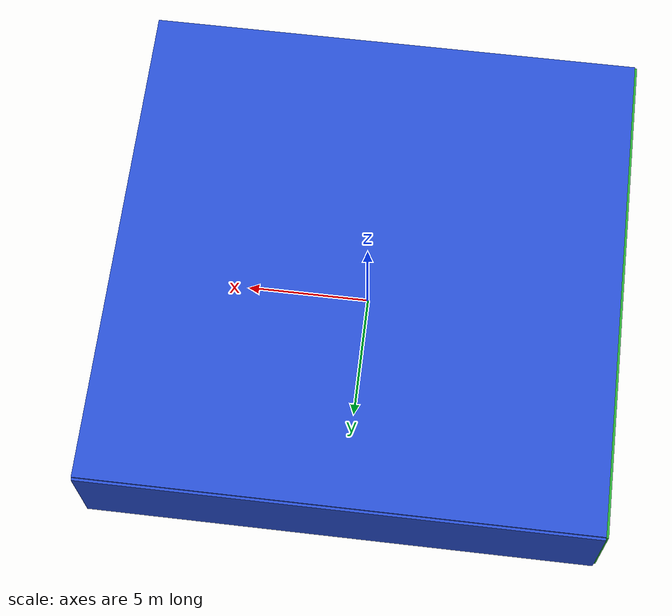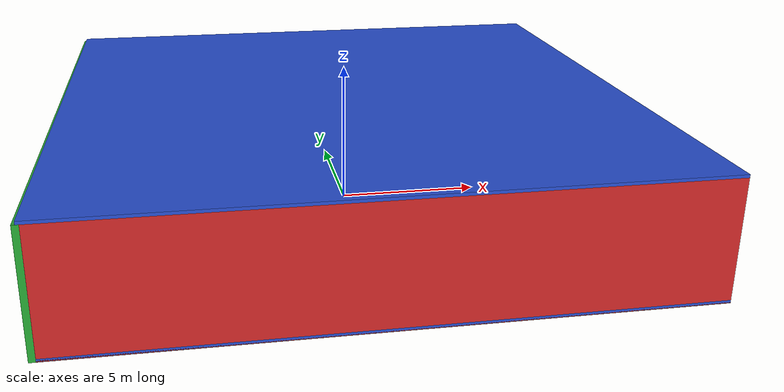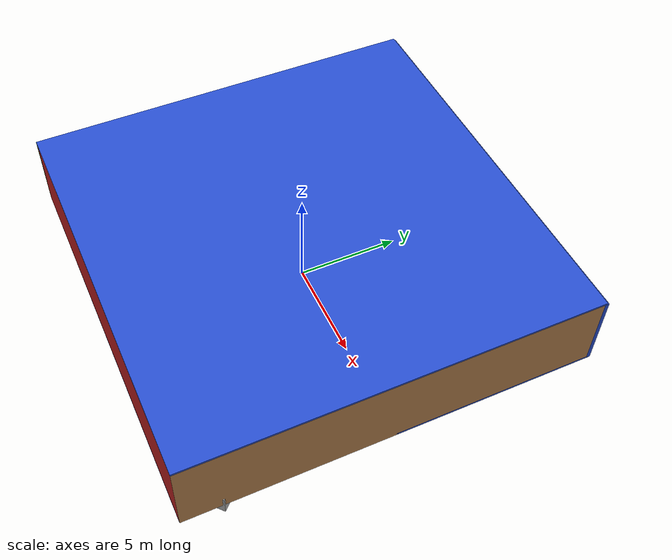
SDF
<sdf version="1.4">
 <world name="default">
  <physics type="ode">
   <max_step_size>0.001</max_step_size>
   <real_time_factor>1</real_time_factor>
   <real_time_update_rate>1000</real_time_update_rate>
   <gravity>0 0 -9.8</gravity>
  </physics>
  <scene><ambient>0.4 0.4 0.4 1</ambient><background>0.7 0.7 0.7 1</background><shadows>1</shadows></scene>
  <model name="Surrounding">
   <static>1</static>
   <link name="Ceiling">
    <collision name="Ceiling_Collision"><geometry><box><size>20 20 0.1</size></box></geometry></collision>
    <visual name="Ceiling_Visual">
     <geometry><box><size>20 20 0.1</size></box></geometry>
     <material>
      <script><uri>file://media/materials/scripts/gazebo.material</uri><name>Gazebo/BlueLaser</name></script>
     </material>
    </visual>
    <pose>0 0 4.05 0 0 0</pose>
   </link>
   <link name="Wall_South">
    <collision name="Wall_South_Collision">
     <geometry><box><size>20 0 4</size></box></geometry>
     <pose>0 0 2 0 -0 0</pose>
    </collision>
    <visual name="Wall_South_Visual">
     <pose>0 0 2 0 -0 0</pose>
     <geometry><box><size>20 0 4</size></box></geometry>
     <material>
      <script><uri>file://media/materials/scripts/gazebo.material</uri><name>Gazebo/Red</name></script>
     </material>
    </visual>
    <velocity_decay><linear>0</linear><angular>0</angular></velocity_decay>
    <pose>0 -10 0 0 -0 0</pose>
   </link>
   <link name="Wall_East">
    <collision name="Wall_21_Collision">
     <geometry><box><size>20 0 4</size></box></geometry>
     <pose>0 0 2 0 -0 0</pose>
    </collision>
    <visual name="Wall_21_Visual">
     <pose>0 0 2 0 -0 0</pose>
     <geometry><box><size>20 0 4</size></box></geometry>
     <material>
      <script><uri>file://media/materials/scripts/gazebo.material</uri><name>Gazebo/Wood</name></script>
     </material>
    </visual>
    <velocity_decay><linear>0</linear><angular>0</angular></velocity_decay>
    <pose>10 0 0 0 -0 1.5708</pose>
   </link>
   <link name="Wall_North">
    <collision name="Wall_22_Collision">
     <geometry><box><size>20 0.2 4</size></box></geometry>
     <pose>0 0 2 0 -0 0</pose>
    </collision>
    <visual name="Wall_22_Visual">
     <pose>0 0 2 0 -0 0</pose>
     <geometry><box><size>20 0.2 4</size></box></geometry>
     <material>
      <script><uri>file://media/materials/scripts/gazebo.material</uri><name>Gazebo/BlueGlow</name></script>
     </material>
    </visual>
    <velocity_decay><linear>0</linear><angular>0</angular></velocity_decay>
    <pose>0 10 0 0 -0 0</pose>
   </link>
   <link name="Wall_West">
    <collision name="Wall_23_Collision">
     <geometry><box><size>20 0.2 4</size></box></geometry>
     <pose>0 0 2 0 -0 0</pose>
    </collision>
    <visual name="Wall_23_Visual">
     <pose>0 0 2 0 -0 0</pose>
     <geometry><box><size>20 0.2 4</size></box></geometry>
     <material>
      <script><uri>file://media/materials/scripts/gazebo.material</uri><name>Gazebo/Green</name></script>
     </material>
    </visual>
    <velocity_decay><linear>0</linear><angular>0</angular></velocity_decay>
    <pose>-10 0 0 0 0 -1.5708</pose>
   </link>
   <link name="Ground_link">
    <collision name="collision">
     <pose>0 0 .05 0 -0 0</pose>
     <geometry><box><size>20 20 0.1</size></box></geometry>
    </collision>
    <visual name="visual">
     <pose>0 0 .05 0 -0 0</pose>
     <geometry><box><size>20 20 0.1</size></box></geometry>
     <material>
      <script><uri>file://media/materials/scripts/gazebo.material</uri><name>Gazebo/Blue</name></script>
     </material>
    </visual>
   </link>
   <static>1</static>
  </model>
  <spherical_coordinates>
   <surface_model>EARTH_WGS84</surface_model>
   <latitude_deg>0</latitude_deg>
   <longitude_deg>0</longitude_deg>
   <elevation>0</elevation>
   <heading_deg>0</heading_deg>
  </spherical_coordinates>
  <light name="lightball_0" type="diffuse">
   <diffuse>0.8 0.8 0.8 1</diffuse>
   <specular>0.2 0.2 0.2 1</specular>
   <attenuation>
    <range>100</range>
    <constant>0.7</constant>
    <linear>0.01</linear>
    <quadratic>0.001</quadratic>
   </attenuation>
   <direction>-0.5 0.1 -0.9</direction>
   <pose>-5.32607471224 -8.77086895633 1.60523405283 0 0 0</pose>
  </light>
  <light name="lightball_1" type="diffuse">
   <diffuse>0.8 0.8 0.8 1</diffuse>
   <specular>0.2 0.2 0.2 1</specular>
   <attenuation>
    <range>100</range>
    <constant>0.7</constant>
    <linear>0.01</linear>
    <quadratic>0.001</quadratic>
   </attenuation>
   <direction>-0.5 0.1 -0.9</direction>
   <pose>9.77640319016 -0.562450812255 1.18932451412 0 0 0</pose>
  </light>
  <light name="lightball_2" type="diffuse">
   <diffuse>0.8 0.8 0.8 1</diffuse>
   <specular>0.2 0.2 0.2 1</specular>
   <attenuation>
    <range>100</range>
    <constant>0.7</constant>
    <linear>0.01</linear>
    <quadratic>0.001</quadratic>
   </attenuation>
   <direction>-0.5 0.1 -0.9</direction>
   <pose>9.65519627673 4.38119781444 1.61465696579 0 0 0</pose>
  </light>
  <light name="lightball_3" type="diffuse">
   <diffuse>0.8 0.8 0.8 1</diffuse>
   <specular>0.2 0.2 0.2 1</specular>
   <attenuation>
    <range>100</range>
    <constant>0.7</constant>
    <linear>0.01</linear>
    <quadratic>0.001</quadratic>
   </attenuation>
   <direction>-0.5 0.1 -0.9</direction>
   <pose>3.66051087174 -9.35071417831 1.44746617409 0 0 0</pose>
  </light>
  <light name="lightball_4" type="diffuse">
   <diffuse>0.8 0.8 0.8 1</diffuse>
   <specular>0.2 0.2 0.2 1</specular>
   <attenuation>
    <range>100</range>
    <constant>0.7</constant>
    <linear>0.01</linear>
    <quadratic>0.001</quadratic>
   </attenuation>
   <direction>-0.5 0.1 -0.9</direction>
   <pose>-3.00297044097 -4.49429967327 0.952494945359 0 0 0</pose>
  </light>
  <light name="lightball_5" type="diffuse">
   <diffuse>0.8 0.8 0.8 1</diffuse>
   <specular>0.2 0.2 0.2 1</specular>
   <attenuation>
    <range>100</range>
    <constant>0.7</constant>
    <linear>0.01</linear>
    <quadratic>0.001</quadratic>
   </attenuation>
   <direction>-0.5 0.1 -0.9</direction>
   <pose>6.17838244908 6.92364561386 1.26733164534 0 0 0</pose>
  </light>
  <light name="lightball_6" type="diffuse">
   <diffuse>0.8 0.8 0.8 1</diffuse>
   <specular>0.2 0.2 0.2 1</specular>
   <attenuation>
    <range>100</range>
    <constant>0.7</constant>
    <linear>0.01</linear>
    <quadratic>0.001</quadratic>
   </attenuation>
   <direction>-0.5 0.1 -0.9</direction>
   <pose>5.52493780353 -5.57572894282 3.27639334581 0 0 0</pose>
  </light>
  <light name="lightball_7" type="diffuse">
   <diffuse>0.8 0.8 0.8 1</diffuse>
   <specular>0.2 0.2 0.2 1</specular>
   <attenuation>
    <range>100</range>
    <constant>0.7</constant>
    <linear>0.01</linear>
    <quadratic>0.001</quadratic>
   </attenuation>
   <direction>-0.5 0.1 -0.9</direction>
   <pose>0.860235541687 -7.91152980888 3.3460824922 0 0 0</pose>
  </light>
  <light name="lightball_8" type="diffuse">
   <diffuse>0.8 0.8 0.8 1</diffuse>
   <specular>0.2 0.2 0.2 1</specular>
   <attenuation>
    <range>100</range>
    <constant>0.7</constant>
    <linear>0.01</linear>
    <quadratic>0.001</quadratic>
   </attenuation>
   <direction>-0.5 0.1 -0.9</direction>
   <pose>-8.82366087451 -4.83340254935 3.84953529824 0 0 0</pose>
  </light>
  <light name="lightball_9" type="diffuse">
   <diffuse>0.8 0.8 0.8 1</diffuse>
   <specular>0.2 0.2 0.2 1</specular>
   <attenuation>
    <range>100</range>
    <constant>0.7</constant>
    <linear>0.01</linear>
    <quadratic>0.001</quadratic>
   </attenuation>
   <direction>-0.5 0.1 -0.9</direction>
   <pose>6.25807199562 -8.8907634191 1.68746186993 0 0 0</pose>
  </light>
  <light name="lightball_10" type="diffuse">
   <diffuse>0.8 0.8 0.8 1</diffuse>
   <specular>0.2 0.2 0.2 1</specular>
   <attenuation>
    <range>100</range>
    <constant>0.7</constant>
    <linear>0.01</linear>
    <quadratic>0.001</quadratic>
   </attenuation>
   <direction>-0.5 0.1 -0.9</direction>
   <pose>2.59776675205 -5.05373835291 0.515928799816 0 0 0</pose>
  </light>
  <light name="lightball_11" type="diffuse">
   <diffuse>0.8 0.8 0.8 1</diffuse>
   <specular>0.2 0.2 0.2 1</specular>
   <attenuation>
    <range>100</range>
    <constant>0.7</constant>
    <linear>0.01</linear>
    <quadratic>0.001</quadratic>
   </attenuation>
   <direction>-0.5 0.1 -0.9</direction>
   <pose>0.0159565808957 0.793320733354 1.87605669419 0 0 0</pose>
  </light>
  <include>
   <uri>model://textured_shapes</uri>
   <pose>-7.09689230012 4.97402525947 0 0 0 0.711274622523</pose>
  </include>
  <include><uri>model://cabinet</uri><pose>-1.45818911173 -1.08954505271 0 0 0 1.88150678611</pose></include>
  <include><uri>model://table</uri><pose>1.83921013416 -8.36210377479 0 0 0 1.56683386878</pose></include>
  <include>
   <uri>model://construction_cone</uri>
   <pose>4.79370681449 -1.34564997157 0 0 0 0.479505687371</pose>
  </include>
  <include>
   <uri>model://robocup_3Dsim_goal</uri>
   <pose>4.5376541107 4.2674146558 0 0 0 3.0194753645</pose>
  </include>
  <include>
   <uri>model://textured_shapes</uri>
   <pose>8.33894738499 -6.8963013651 0 0 0 0.743165667381</pose>
  </include>
 </world>
</sdf>

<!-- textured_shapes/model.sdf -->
<sdf version="1.6">
  <model name="textured_shapes">
    <pose>0 0 0.5 0 0 0</pose>
    <link name="box">
      <pose>0 -1.5 0 0 0 0</pose>
      <collision name="collision">
        <geometry>
          <box>
            <size>1 1 1</size>
          </box>
        </geometry>
      </collision>
      <visual name="visual">
        <geometry>
          <box>
            <size>1 1 1</size>
          </box>
        </geometry>
        <material>
          <script>
            <uri>model://../model_source/models/textured_shapes/materials/scripts</uri>
            <uri>model://../model_source/models/textured_shapes/materials/textures</uri>
            <name>TexturedShape/Squares</name>
          </script>
        </material>
      </visual>
    </link>
    <link name="sphere">
      <collision name="collision">
        <geometry>
          <sphere>
            <radius>0.5</radius>
          </sphere>
        </geometry>
      </collision>
      <visual name="visual">
        <geometry>
          <sphere>
            <radius>0.5</radius>
          </sphere>
        </geometry>
        <material>
          <script>
            <uri>model://../model_source/models/textured_shapes/materials/scripts</uri>
            <uri>model://../model_source/models/textured_shapes/materials/textures</uri>
            <name>TexturedShape/Squares</name>
          </script>
        </material>
      </visual>
    </link>
    <link name="cylinder">
      <pose>0 1.5 0 0 0 0</pose>
      <collision name="collision">
        <geometry>
          <cylinder>
            <radius>0.5</radius>
            <length>1</length>
          </cylinder>
        </geometry>
      </collision>
      <visual name="visual">
        <geometry>
          <cylinder>
            <radius>0.5</radius>
            <length>1</length>
          </cylinder>
        </geometry>
        <material>
          <script>
            <uri>model://../model_source/models/textured_shapes/materials/scripts</uri>
            <uri>model://../model_source/models/textured_shapes/materials/textures</uri>
            <name>TexturedShape/Squares</name>
          </script>
        </material>
      </visual>
    </link>
  </model>
</sdf>

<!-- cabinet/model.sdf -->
<sdf version="1.5">
  <model name="cabinet">
    <static>true</static>
    <link name="cabinet_bottom_plate">
      <inertial>
        <pose>0 0 -1 0 0 0</pose>
        <inertia>
          <ixx>2.050000</ixx>
          <ixy>0</ixy>
          <ixz>0</ixz>
          <iyy>2.050000</iyy>
          <iyz>0</iyz>
          <izz>2.050000</izz>
        </inertia>
        <mass>25.000000</mass>
      </inertial>
      <collision name="cabinet_bottom_plate_geom">
        <pose>0 0 0.010000 0 0 0</pose>
        <geometry>
          <box>
            <size>0.450000 0.450000 0.020000</size>
          </box>
        </geometry>
      </collision>
      <visual name="cabinet_bottom_plate_geom_visual">
        <pose>0 0 0.010000 0 0 0</pose>
        <geometry>
          <box>
            <size>0.450000 0.450000 0.020000</size>
          </box>
        </geometry>
        <material>
          <script>
            <uri>model://media/materials/scripts/gazebo.material</uri>
            <name>Gazebo/Wood</name>
          </script>
        </material>
      </visual>
      <collision name="cabinet_bottom_plate_geom_cabinet_back_plate">
        <pose>0.235000 0 0.510000 0 0 0</pose>
        <geometry>
          <box>
            <size>0.020000 0.450000 1.020000</size>
          </box>
        </geometry>
      </collision>
      <visual name="cabinet_bottom_plate_geom_cabinet_back_plate_visual">
        <pose>0.235000 0 0.510000 0 0 0</pose>
        <geometry>
          <box>
            <size>0.020000 0.450000 1.020000</size>
          </box>
        </geometry>
        <material>
          <script>
            <uri>model://media/materials/scripts/gazebo.material</uri>
            <name>Gazebo/Wood</name>
          </script>
        </material>
      </visual>
      <collision name="cabinet_bottom_plate_geom_cabinet_left_plate">
        <pose>0 0.235000 0.510000 0 0 0</pose>
        <geometry>
          <box>
            <size>0.450000 0.020000 1.020000</size>
          </box>
        </geometry>
      </collision>
      <visual name="cabinet_bottom_plate_geom_cabinet_left_plate_visual">
        <pose>0 0.235000 0.510000 0 0 0</pose>
        <geometry>
          <box>
            <size>0.450000 0.020000 1.020000</size>
          </box>
        </geometry>
        <material>
          <script>
            <uri>model://media/materials/scripts/gazebo.material</uri>
            <name>Gazebo/Wood</name>
          </script>
        </material>
      </visual>
      <collision name="cabinet_bottom_plate_geom_cabinet_middle_plate">
        <pose>0 0 0.510000 0 0 0</pose>
        <geometry>
          <box>
            <size>0.450000 0.450000 0.020000</size>
          </box>
        </geometry>
      </collision>
      <visual name="cabinet_bottom_plate_geom_cabinet_middle_plate_visual">
        <pose>0 0 0.510000 0 0 0</pose>
        <geometry>
          <box>
            <size>0.450000 0.450000 0.020000</size>
          </box>
        </geometry>
        <material>
          <script>
            <uri>model://media/materials/scripts/gazebo.material</uri>
            <name>Gazebo/Wood</name>
          </script>
        </material>
      </visual>
      <collision name="cabinet_bottom_plate_geom_cabinet_right_plate">
        <pose>0 -0.235000 0.510000 0 0 0</pose>
        <geometry>
          <box>
            <size>0.450000 0.020000 1.020000</size>
          </box>
        </geometry>
      </collision>
      <visual name="cabinet_bottom_plate_geom_cabinet_right_plate_visual">
        <pose>0 -0.235000 0.510000 0 0 0</pose>
        <geometry>
          <box>
            <size>0.450000 0.020000 1.020000</size>
          </box>
        </geometry>
        <material>
          <script>
            <uri>model://media/materials/scripts/gazebo.material</uri>
            <name>Gazebo/Wood</name>
          </script>
        </material>
      </visual>
      <collision name="cabinet_bottom_plate_geom_cabinet_top_plate">
        <pose>0 0 1.010000 0 0 0</pose>
        <geometry>
          <box>
            <size>0.450000 0.450000 0.020000</size>
          </box>
        </geometry>
      </collision>
      <visual name="cabinet_bottom_plate_geom_cabinet_top_plate_visual">
        <pose>0 0 1.010000 0 0 0</pose>
        <geometry>
          <box>
            <size>0.450000 0.450000 0.020000</size>
          </box>
        </geometry>
        <material>
          <script>
            <uri>model://media/materials/scripts/gazebo.material</uri>
            <name>Gazebo/Wood</name>
          </script>
        </material>
      </visual>
    </link>
  </model>
</sdf>

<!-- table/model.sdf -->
<sdf version="1.5">
  <model name="table">
    <static>true</static>
    <link name="link">
      <collision name="surface">
        <pose>0 0 1.0 0 0 0</pose>
        <geometry>
          <box>
            <size>1.5 0.8 0.03</size>
          </box>
        </geometry>
        <surface>
          <friction>
            <ode>
              <mu>0.6</mu>
              <mu2>0.6</mu2>
            </ode>
          </friction>
        </surface>
      </collision>
      <visual name="visual1">
        <pose>0 0 1.0 0 0 0</pose>
        <geometry>
          <box>
            <size>1.5 0.8 0.03</size>
          </box>
        </geometry>
        <material>
          <script>
            <uri>model://media/materials/scripts/gazebo.material</uri>
            <name>Gazebo/Wood</name>
          </script>
        </material>
      </visual>
      <collision name="front_left_leg">
        <pose>0.68 0.38 0.5 0 0 0</pose>
        <geometry>
          <cylinder>
            <radius>0.02</radius>
            <length>1.0</length>
          </cylinder>
        </geometry>
      </collision>
      <visual name="front_left_leg">
        <pose>0.68 0.38 0.5 0 0 0</pose>
        <geometry>
          <cylinder>
            <radius>0.02</radius>
            <length>1.0</length>
          </cylinder>
        </geometry>
        <material>
          <script>
            <uri>model://media/materials/scripts/gazebo.material</uri>
            <name>Gazebo/Grey</name>
          </script>
        </material>
      </visual>
      <collision name="front_right_leg">
        <pose>0.68 -0.38 0.5 0 0 0</pose>
        <geometry>
          <cylinder>
            <radius>0.02</radius>
            <length>1.0</length>
          </cylinder>
        </geometry>
      </collision>
      <visual name="front_right_leg">
        <pose>0.68 -0.38 0.5 0 0 0</pose>
        <geometry>
          <cylinder>
            <radius>0.02</radius>
            <length>1.0</length>
          </cylinder>
        </geometry>
        <material>
          <script>
            <uri>model://media/materials/scripts/gazebo.material</uri>
            <name>Gazebo/Grey</name>
          </script>
        </material>
      </visual>
      <collision name="back_right_leg">
        <pose>-0.68 -0.38 0.5 0 0 0</pose>
        <geometry>
          <cylinder>
            <radius>0.02</radius>
            <length>1.0</length>
          </cylinder>
        </geometry>
      </collision>
      <visual name="back_right_leg">
        <pose>-0.68 -0.38 0.5 0 0 0</pose>
        <geometry>
          <cylinder>
            <radius>0.02</radius>
            <length>1.0</length>
          </cylinder>
        </geometry>
        <material>
          <script>
            <uri>model://media/materials/scripts/gazebo.material</uri>
            <name>Gazebo/Grey</name>
          </script>
        </material>
      </visual>
      <collision name="back_left_leg">
        <pose>-0.68 0.38 0.5 0 0 0</pose>
        <geometry>
          <cylinder>
            <radius>0.02</radius>
            <length>1.0</length>
          </cylinder>
        </geometry>
      </collision>
      <visual name="back_left_leg">
        <pose>-0.68 0.38 0.5 0 0 0</pose>
        <geometry>
          <cylinder>
            <radius>0.02</radius>
            <length>1.0</length>
          </cylinder>
        </geometry>
        <material>
          <script>
            <uri>model://media/materials/scripts/gazebo.material</uri>
            <name>Gazebo/Grey</name>
          </script>
        </material>
      </visual>
    </link>
  </model>
</sdf>

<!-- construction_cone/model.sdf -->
<sdf version="1.5">
  <model name="Construction Cone">
    <link name="link">
      <collision name="collision">
        <geometry>
          <mesh>
            <scale>10 10 10</scale>
            <uri>file://isr-testbed/construction_cone/meshes/construction_cone.dae</uri>
          </mesh>
        </geometry>
      </collision>
      <visual name="visual">
        <geometry>
          <mesh>
            <scale>10 10 10</scale>
            <uri>file://isr-testbed/construction_cone/meshes/construction_cone.dae</uri>
          </mesh>
        </geometry>
      </visual>
    </link>
  </model>
</sdf>

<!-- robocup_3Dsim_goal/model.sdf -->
<sdf version="1.5">
  <model name="robocup_3d_goal">
    <static>true</static>
    <link name="left_post">
      <pose>0 1.05 0.45 0 0 0</pose>
      <collision name="collision">
        <geometry>
          <cylinder>
            <radius>0.05</radius>
            <length>0.9</length>
          </cylinder>
        </geometry>
      </collision>
      <visual name="visual">
        <geometry>
          <cylinder>
            <radius>0.05</radius>
            <length>0.9</length>
          </cylinder>
        </geometry>
        <material>
          <script>
            <uri>file://media/materials/scripts/gazebo.material</uri>
            <name>Gazebo/ZincYellow</name>
          </script>
        </material>
      </visual>
    </link>
    <link name="left_support_horiz_lower">
      <pose>0.30 1.05 0.01 0 0 0</pose>
      <collision name="collision">
        <geometry>
          <box>
            <size>0.50 0.02 0.02</size>
          </box>
        </geometry>
      </collision>
      <visual name="visual">
        <geometry>
          <box>
            <size>0.50 0.02 0.02</size>
          </box>
        </geometry>
        <material>
          <script>
            <uri>file://media/materials/scripts/gazebo.material</uri>
            <name>Gazebo/White</name>
          </script>
        </material>
      </visual>
    </link>
    <link name="left_support_horiz_upper">
      <pose>0.30 1.05 0.79 0 0 0</pose>
      <collision name="collision">
        <geometry>
          <box>
            <size>0.50 0.02 0.02</size>
          </box>
        </geometry>
      </collision>
      <visual name="visual">
        <geometry>
          <box>
            <size>0.50 0.02 0.02</size>
          </box>
        </geometry>
        <material>
          <script>
            <uri>file://media/materials/scripts/gazebo.material</uri>
            <name>Gazebo/White</name>
          </script>
        </material>
      </visual>
    </link>
    <link name="left_support_vertical">
      <pose>0.56 1.05 0.4 0 1.5708 0</pose>
      <collision name="collision">
        <geometry>
          <box>
            <size>0.80 0.02 0.02</size>
          </box>
        </geometry>
      </collision>
      <visual name="visual">
        <geometry>
          <box>
            <size>0.80 0.02 0.02</size>
          </box>
        </geometry>
        <material>
          <script>
            <uri>file://media/materials/scripts/gazebo.material</uri>
            <name>Gazebo/White</name>
          </script>
        </material>
      </visual>
    </link>
    <link name="right_support_horiz_lower">
      <pose>0.30 -1.05 0.01 0 0 0</pose>
      <collision name="collision">
        <geometry>
          <box>
            <size>0.50 0.02 0.02</size>
          </box>
        </geometry>
      </collision>
      <visual name="visual">
        <geometry>
          <box>
            <size>0.50 0.02 0.02</size>
          </box>
        </geometry>
        <material>
          <script>
            <uri>file://media/materials/scripts/gazebo.material</uri>
            <name>Gazebo/White</name>
          </script>
        </material>
      </visual>
    </link>
    <link name="right_support_horiz_upper">
      <pose>0.30 -1.05 0.79 0 0 0</pose>
      <collision name="collision">
        <geometry>
          <box>
            <size>0.50 0.02 0.02</size>
          </box>
        </geometry>
      </collision>
      <visual name="visual">
        <geometry>
          <box>
            <size>0.50 0.02 0.02</size>
          </box>
        </geometry>
        <material>
          <script>
            <uri>file://media/materials/scripts/gazebo.material</uri>
            <name>Gazebo/White</name>
          </script>
        </material>
      </visual>
    </link>
    <link name="right_support_vertical">
      <pose>0.56 -1.05 0.4 0 1.5708 0</pose>
      <collision name="collision">
        <geometry>
          <box>
            <size>0.80 0.02 0.02</size>
          </box>
        </geometry>
      </collision>
      <visual name="visual">
        <geometry>
          <box>
            <size>0.80 0.02 0.02</size>
          </box>
        </geometry>
        <material>
          <script>
            <uri>file://media/materials/scripts/gazebo.material</uri>
            <name>Gazebo/White</name>
          </script>
        </material>
      </visual>
    </link>
    <link name="center_support_horiz_lower">
      <pose>0.56 0 0.01 0 1.5708 0</pose>
      <collision name="collision">
        <geometry>
          <box>
            <size>0.02 2.08 0.02</size>
          </box>
        </geometry>
      </collision>
      <visual name="visual">
        <geometry>
          <box>
            <size>0.02 2.08 0.02</size>
          </box>
        </geometry>
        <material>
          <script>
            <uri>file://media/materials/scripts/gazebo.material</uri>
            <name>Gazebo/White</name>
          </script>
        </material>
      </visual>
    </link>
    <link name="center_support_horiz_upper">
      <pose>0.56 0 0.79 0 1.5708 0</pose>
      <collision name="collision">
        <geometry>
          <box>
            <size>0.02 2.08 0.02</size>
          </box>
        </geometry>
      </collision>
      <visual name="visual">
        <geometry>
          <box>
            <size>0.02 2.08 0.02</size>
          </box>
        </geometry>
        <material>
          <script>
            <uri>file://media/materials/scripts/gazebo.material</uri>
            <name>Gazebo/White</name>
          </script>
        </material>
      </visual>
    </link>
    <link name="right_post">
      <pose>0 -1.05 0.45 0 0 0</pose>
      <collision name="collision">
        <geometry>
          <cylinder>
            <radius>0.05</radius>
            <length>0.9</length>
          </cylinder>
        </geometry>
      </collision>
      <visual name="visual">
        <geometry>
          <cylinder>
            <radius>0.05</radius>
            <length>0.9</length>
          </cylinder>
        </geometry>
        <material>
          <script>
            <uri>file://media/materials/scripts/gazebo.material</uri>
            <name>Gazebo/ZincYellow</name>
          </script>
        </material>
      </visual>
    </link>
    <link name="crossbar">
      <pose>0 0 0.85 1.57 1.57 0</pose>
      <collision name="collision">
        <geometry>
          <cylinder>
            <radius>0.05</radius>
            <length>2.0</length>
          </cylinder>
        </geometry>
      </collision>
      <visual name="visual">
        <geometry>
          <cylinder>
            <radius>0.05</radius>
            <length>2.0</length>
          </cylinder>
        </geometry>
        <material>
          <script>
            <uri>file://media/materials/scripts/gazebo.material</uri>
            <name>Gazebo/ZincYellow</name>
          </script>
        </material>
      </visual>
    </link>
    <link name="center_net">
      <pose>0.56 0 0.40 0 0 0</pose>
      <collision name="collision">
        <geometry>
          <box>
            <size>0.01 2.1 0.80</size>
          </box>
        </geometry>
      </collision>
      <visual name="visual">
        <geometry>
          <box>
            <size>0.01 2.1 0.80</size>
          </box>
        </geometry>
        <material>
          <script>
            <uri>model://../model_source/models/robocup09_spl_field/materials/scripts/</uri>
            <uri>model://../model_source/models/robocup09_spl_field/materials/textures/</uri>
            <name>RoboCup/Net</name>
          </script>
        </material>
      </visual>
    </link>
    <link name="left_net">
      <pose>0.30 1.05 0.40 0 0 0</pose>
      <collision name="collision">
        <geometry>
          <box>
            <size>0.50 0.01 0.76</size>
          </box>
        </geometry>
      </collision>
      <visual name="visual">
        <geometry>
          <box>
            <size>0.50 0.01 0.76</size>
          </box>
        </geometry>
        <material>
          <script>
            <uri>model://../model_source/models/robocup09_spl_field/materials/scripts/</uri>
            <uri>model://../model_source/models/robocup09_spl_field/materials/textures/</uri>
            <name>RoboCup/Net</name>
          </script>
        </material>
      </visual>
    </link>
    <link name="right_net">
      <pose>0.30 -1.05 0.40 0 0 0</pose>
      <collision name="collision">
        <geometry>
          <box>
            <size>0.50 0.01 0.76</size>
          </box>
        </geometry>
      </collision>
      <visual name="visual">
        <geometry>
          <box>
            <size>0.50 0.01 0.76</size>
          </box>
        </geometry>
        <material>
          <script>
            <uri>model://../model_source/models/robocup09_spl_field/materials/scripts/</uri>
            <uri>model://../model_source/models/robocup09_spl_field/materials/textures/</uri>
            <name>RoboCup/Net</name>
          </script>
        </material>
      </visual>
    </link>
  </model>
</sdf>
